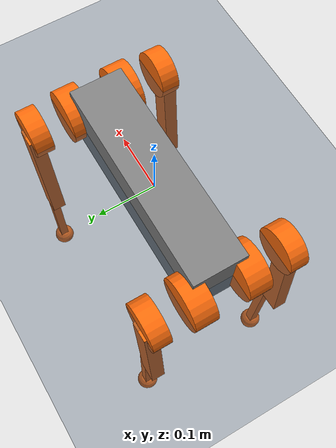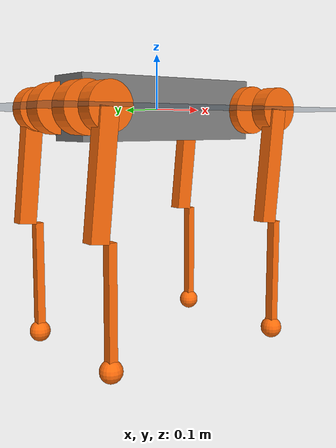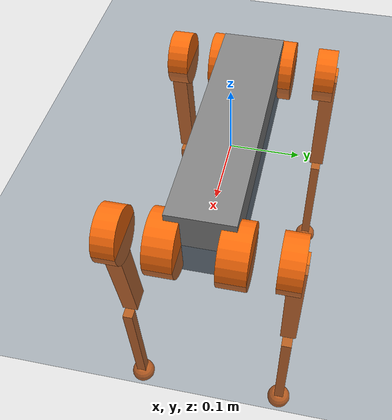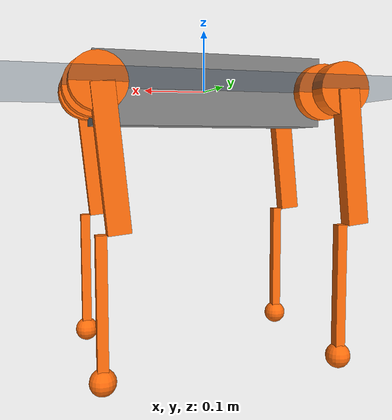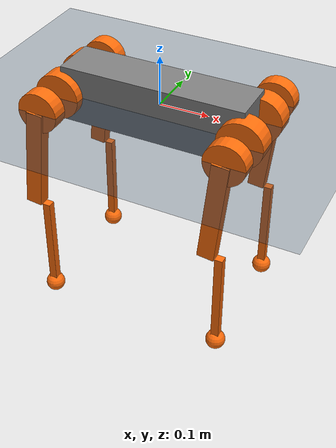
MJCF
<mujoco model="go1 scene">
  <include file="mjmodel.xml"/>

  <statistic center="0 0 0.5" extent="0.8"/>
  <option gravity="0 0 -9.81"/>

  <visual>
    <headlight diffuse="0.6 0.6 0.6" ambient="0.3 0.3 0.3" specular="0 0 0"/>
    <rgba haze="0.15 0.25 0.35 1"/>
    <global azimuth="120" elevation="-20"/>
  </visual>

  <asset>
    <texture type="skybox" builtin="gradient" rgb1="0.3 0.5 0.7" rgb2="0 0 0" width="512" height="3072"/>
    <texture type="2d" name="groundplane" builtin="checker" mark="edge" rgb1="0.2 0.3 0.4" rgb2="0.1 0.2 0.3"
      markrgb="0.8 0.8 0.8" width="300" height="300"/>
    <material name="groundplane" texture="groundplane" texuniform="true" texrepeat="5 5" reflectance="0.2"/>
  </asset>

  <worldbody>
    <light pos="0 0 1.5" dir="0 0 -1" directional="true"/>
    <geom name="floor" size="0 0 0.05" type="plane" material="groundplane"/>
  </worldbody>
</mujoco>

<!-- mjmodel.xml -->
<mujoco model="robot">
  <compiler angle="radian"/>

  <worldbody>
    <geom size="0.1881 0.04675 0.057" type="box"/>
    <body name="RF_hip" pos="0.1881 -0.04675 0">
      <inertial pos="-0.00541 0.00074 6e-06" quat="0.46479 0.464271 0.528995 0.537203" mass="0.591" diaginertia="0.000641022 0.000457646 0.000369171"/>
      <joint name="RF_HAA" pos="0 0 0" axis="1 0 0" range="-1.0472 1.0472" actuatorfrcrange="-23.7 23.7"/>
      <geom size="0.046 0.02" quat="0.707107 0.707107 0 0" type="cylinder" rgba="1 0.423529 0.0392157 1"/>
      <body name="RF_thigh" pos="0 -0.08 0">
        <inertial pos="-0.003468 0.018947 -0.032736" quat="0.999398 -0.00213721 -0.0341314 -0.00590909" mass="0.92" diaginertia="0.00587404 0.00559622 0.00104903"/>
        <joint name="RF_HFE" pos="0 0 0" axis="0 1 0" range="-0.663225 2.96706" actuatorfrcrange="-23.7 23.7"/>
        <geom size="0.1065 0.01225 0.017" pos="-0.015 0 -0.1065" quat="0.670882 0 0.741564 0" type="box" rgba="1 0.423529 0.0392157 1"/>
        <geom size="0.041 0.016" pos="0 0.008 0" quat="0.707107 0.707107 0 0" type="cylinder" rgba="1 0.423529 0.0392157 1"/>
        <body name="RF_calf" pos="0 0 -0.213">
          <inertial pos="0.00431134 0.000896424 -0.150771" quat="0.762414 0.00939942 0.0179881 0.646772" mass="0.191" diaginertia="0.0033064 0.00329235 3.62038e-05"/>
          <joint name="RF_KFE" pos="0 0 0" axis="0 1 0" range="-2.72271 -0.837758" actuatorfrcrange="-23.7 23.7"/>
          <geom size="0.1065 0.008 0.008" pos="0 0 -0.1065" quat="0.707107 0 0.707107 0" type="box" rgba="1 0.423529 0.0392157 1"/>
          <geom size="0.02" pos="0 0 -0.213" rgba="1 0.423529 0.0392157 1"/>
        </body>
      </body>
    </body>
    <body name="LF_hip" pos="0.1881 0.04675 0">
      <inertial pos="-0.00541 -0.00074 6e-06" quat="0.537203 0.528995 0.464271 0.46479" mass="0.591" diaginertia="0.000641022 0.000457646 0.000369171"/>
      <joint name="LF_HAA" pos="0 0 0" axis="1 0 0" range="-1.0472 1.0472" actuatorfrcrange="-23.7 23.7"/>
      <geom size="0.046 0.02" quat="0.707107 0.707107 0 0" type="cylinder" rgba="1 0.423529 0.0392157 1"/>
      <body name="LF_thigh" pos="0 0.08 0">
        <inertial pos="-0.003468 -0.018947 -0.032736" quat="0.999398 0.00213721 -0.0341314 0.00590909" mass="0.92" diaginertia="0.00587404 0.00559622 0.00104903"/>
        <joint name="LF_HFE" pos="0 0 0" axis="0 1 0" range="-0.663225 2.96706" actuatorfrcrange="-23.7 23.7"/>
        <geom size="0.1065 0.01225 0.017" pos="-0.015 0 -0.1065" quat="0.670882 0 0.741564 0" type="box" rgba="1 0.423529 0.0392157 1"/>
        <geom size="0.041 0.016" pos="0 -0.008 0" quat="0.707107 0.707107 0 0" type="cylinder" rgba="1 0.423529 0.0392157 1"/>
        <body name="LF_calf" pos="0 0 -0.213">
          <inertial pos="0.00431134 0.000896424 -0.150771" quat="0.762414 0.00939942 0.0179881 0.646772" mass="0.191" diaginertia="0.0033064 0.00329235 3.62038e-05"/>
          <joint name="LF_KFE" pos="0 0 0" axis="0 1 0" range="-2.72271 -0.837758" actuatorfrcrange="-23.7 23.7"/>
          <geom size="0.1065 0.008 0.008" pos="0 0 -0.1065" quat="0.707107 0 0.707107 0" type="box" rgba="1 0.423529 0.0392157 1"/>
          <geom size="0.02" pos="0 0 -0.213" rgba="1 0.423529 0.0392157 1"/>
        </body>
      </body>
    </body>
    <body name="RH_hip" pos="-0.1881 -0.04675 0">
      <inertial pos="0.00541 0.00074 6e-06" quat="0.528995 0.537203 0.46479 0.464271" mass="0.591" diaginertia="0.000641022 0.000457646 0.000369171"/>
      <joint name="RH_HAA" pos="0 0 0" axis="1 0 0" range="-1.0472 1.0472" actuatorfrcrange="-23.7 23.7"/>
      <geom size="0.046 0.02" quat="0.707107 0.707107 0 0" type="cylinder" rgba="1 0.423529 0.0392157 1"/>
      <body name="RH_thigh" pos="0 -0.08 0">
        <inertial pos="-0.003468 0.018947 -0.032736" quat="0.999398 -0.00213721 -0.0341314 -0.00590909" mass="0.92" diaginertia="0.00587404 0.00559622 0.00104903"/>
        <joint name="RH_HFE" pos="0 0 0" axis="0 1 0" range="-0.663225 2.96706" actuatorfrcrange="-23.7 23.7"/>
        <geom size="0.1065 0.01225 0.017" pos="-0.015 0 -0.1065" quat="0.670882 0 0.741564 0" type="box" rgba="1 0.423529 0.0392157 1"/>
        <geom size="0.041 0.016" pos="0 0.008 0" quat="0.707107 0.707107 0 0" type="cylinder" rgba="1 0.423529 0.0392157 1"/>
        <body name="RH_calf" pos="0 0 -0.213">
          <inertial pos="0.00431134 0.000896424 -0.150771" quat="0.762414 0.00939942 0.0179881 0.646772" mass="0.191" diaginertia="0.0033064 0.00329235 3.62038e-05"/>
          <joint name="RH_KFE" pos="0 0 0" axis="0 1 0" range="-2.72271 -0.837758" actuatorfrcrange="-23.7 23.7"/>
          <geom size="0.1065 0.008 0.008" pos="0 0 -0.1065" quat="0.707107 0 0.707107 0" type="box" rgba="1 0.423529 0.0392157 1"/>
          <geom size="0.02" pos="0 0 -0.213" rgba="1 0.423529 0.0392157 1"/>
        </body>
      </body>
    </body>
    <body name="LH_hip" pos="-0.1881 0.04675 0">
      <inertial pos="0.00541 -0.00074 6e-06" quat="0.464271 0.46479 0.537203 0.528995" mass="0.591" diaginertia="0.000641022 0.000457646 0.000369171"/>
      <joint name="LH_HAA" pos="0 0 0" axis="1 0 0" range="-1.0472 1.0472" actuatorfrcrange="-23.7 23.7"/>
      <geom size="0.046 0.02" quat="0.707107 0.707107 0 0" type="cylinder" rgba="1 0.423529 0.0392157 1"/>
      <body name="LH_thigh" pos="0 0.08 0">
        <inertial pos="-0.003468 -0.018947 -0.032736" quat="0.999398 0.00213721 -0.0341314 0.00590909" mass="0.92" diaginertia="0.00587404 0.00559622 0.00104903"/>
        <joint name="LH_HFE" pos="0 0 0" axis="0 1 0" range="-0.663225 2.96706" actuatorfrcrange="-23.7 23.7"/>
        <geom size="0.1065 0.01225 0.017" pos="-0.015 0 -0.1065" quat="0.670882 0 0.741564 0" type="box" rgba="1 0.423529 0.0392157 1"/>
        <geom size="0.041 0.016" pos="0 -0.008 0" quat="0.707107 0.707107 0 0" type="cylinder" rgba="1 0.423529 0.0392157 1"/>
        <body name="LH_calf" pos="0 0 -0.213">
          <inertial pos="0.00431134 0.000896424 -0.150771" quat="0.762414 0.00939942 0.0179881 0.646772" mass="0.191" diaginertia="0.0033064 0.00329235 3.62038e-05"/>
          <joint name="LH_KFE" pos="0 0 0" axis="0 1 0" range="-2.72271 -0.837758" actuatorfrcrange="-23.7 23.7"/>
          <geom size="0.1065 0.008 0.008" pos="0 0 -0.1065" quat="0.707107 0 0.707107 0" type="box" rgba="1 0.423529 0.0392157 1"/>
          <geom size="0.02" pos="0 0 -0.213" rgba="1 0.423529 0.0392157 1"/>
        </body>
      </body>
    </body>
  </worldbody>
</mujoco>
